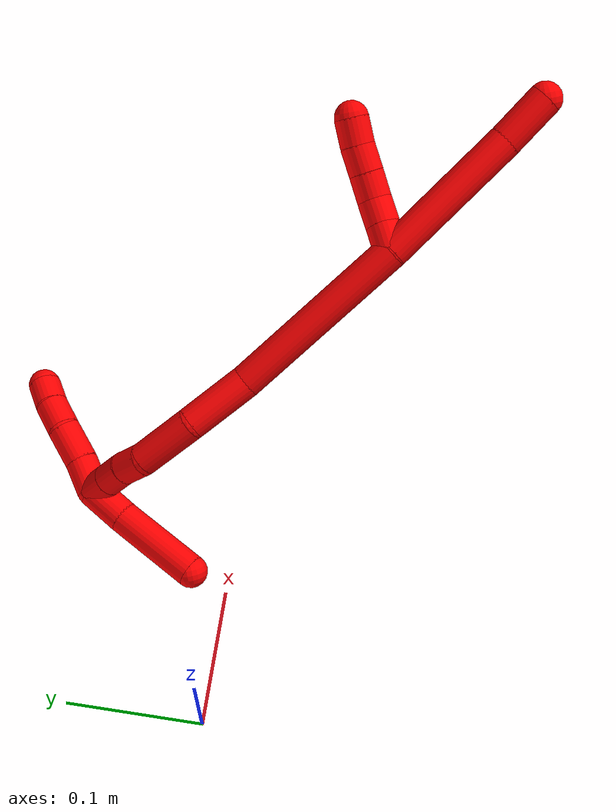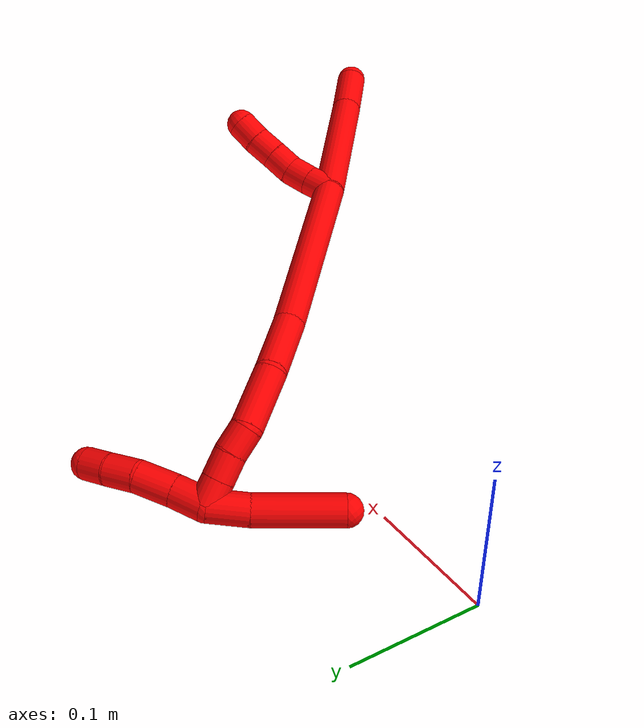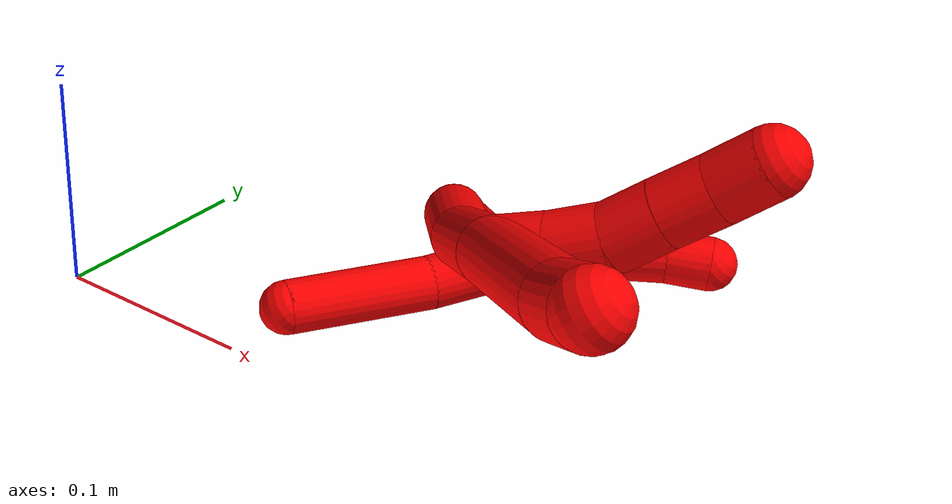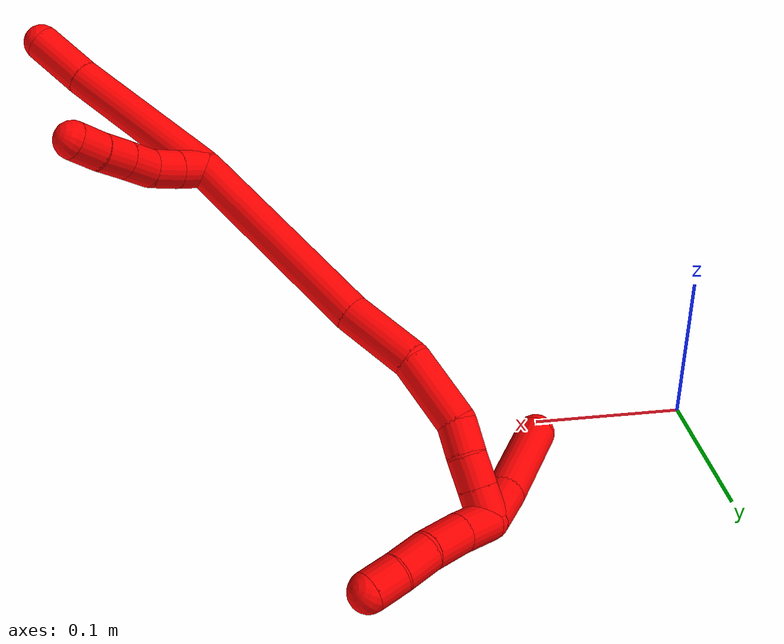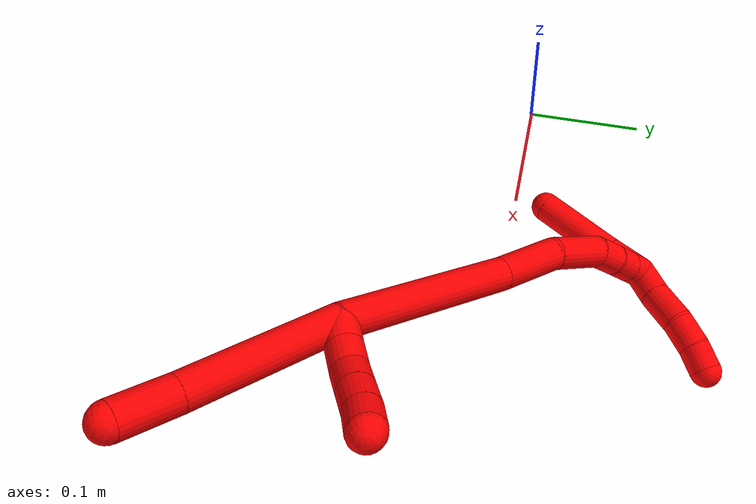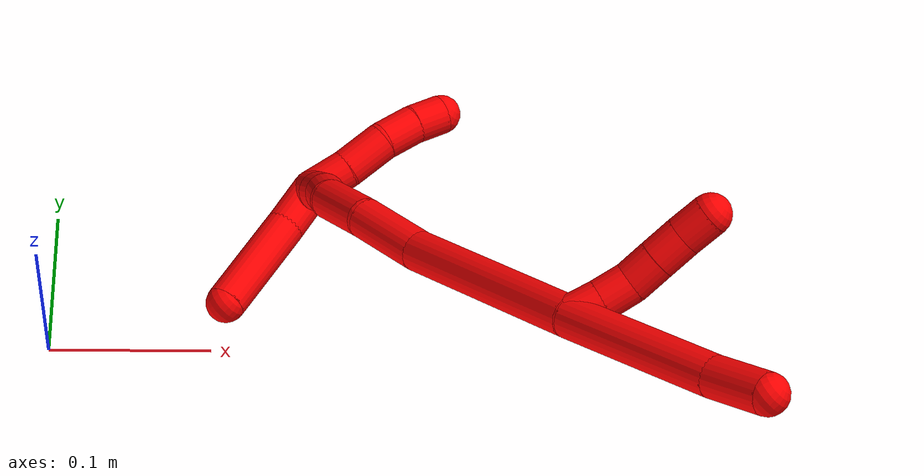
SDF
<sdf version="1.7">
 <world name="default">
  <model name="2">
   <static>0</static>
   <link name="2">
    <collision name="collision-cylinder-e_1_2_8">
     <pose>0.04283 -0.016993 0.030333 0.510645 0.888906 0.247342</pose>
     <geometry><cylinder><radius>0.0125</radius><length>0.110332</length></cylinder></geometry>
     <surface>
      <friction><ode><mu>1.16</mu><mu2>1.16</mu2><slip1>0</slip1><slip2>0</slip2></ode></friction>
      <contact><ode><kp>1e+06</kp><kd>1</kd><max_vel>0</max_vel><min_depth>0.001</min_depth></ode></contact>
     </surface>
    </collision>
    <visual name="visual-cylinder-e_1_2_8">
     <pose>0.04283 -0.016993 0.030333 0.510645 0.888906 0.247342</pose>
     <geometry><cylinder><radius>0.0125</radius><length>0.110332</length></cylinder></geometry>
     <material><ambient>1 0 0 1</ambient></material>
    </visual>
    <collision name="collision-cylinder-e_2_8_6">
     <pose>0.099934 -0.041153 0.072426 0.547367 0.803361 0.237372</pose>
     <geometry><cylinder><radius>0.0125</radius><length>0.039668</length></cylinder></geometry>
     <surface>
      <friction><ode><mu>1.16</mu><mu2>1.16</mu2><slip1>0</slip1><slip2>0</slip2></ode></friction>
      <contact><ode><kp>1e+06</kp><kd>1</kd><max_vel>0</max_vel><min_depth>0.001</min_depth></ode></contact>
     </surface>
    </collision>
    <visual name="visual-cylinder-e_2_8_6">
     <pose>0.099934 -0.041153 0.072426 0.547367 0.803361 0.237372</pose>
     <geometry><cylinder><radius>0.0125</radius><length>0.039668</length></cylinder></geometry>
     <material><ambient>1 0 0 1</ambient></material>
    </visual>
    <collision name="collision-cylinder-e_1_2_9">
     <pose>0.00094 0.004238 0.009009 -0.439677 0.094181 -0.02106</pose>
     <geometry><cylinder><radius>0.0125</radius><length>0.02</length></cylinder></geometry>
     <surface>
      <friction><ode><mu>1.16</mu><mu2>1.16</mu2><slip1>0</slip1><slip2>0</slip2></ode></friction>
      <contact><ode><kp>1e+06</kp><kd>1</kd><max_vel>0</max_vel><min_depth>0.001</min_depth></ode></contact>
     </surface>
    </collision>
    <visual name="visual-cylinder-e_1_2_9">
     <pose>0.00094 0.004238 0.009009 -0.439677 0.094181 -0.02106</pose>
     <geometry><cylinder><radius>0.0125</radius><length>0.02</length></cylinder></geometry>
     <material><ambient>1 0 0 1</ambient></material>
    </visual>
    <collision name="collision-cylinder-e_2_9_10">
     <pose>0.002327 0.012092 0.02733 -0.370421 0.044677 -0.008372</pose>
     <geometry><cylinder><radius>0.0125</radius><length>0.02</length></cylinder></geometry>
     <surface>
      <friction><ode><mu>1.16</mu><mu2>1.16</mu2><slip1>0</slip1><slip2>0</slip2></ode></friction>
      <contact><ode><kp>1e+06</kp><kd>1</kd><max_vel>0</max_vel><min_depth>0.001</min_depth></ode></contact>
     </surface>
    </collision>
    <visual name="visual-cylinder-e_2_9_10">
     <pose>0.002327 0.012092 0.02733 -0.370421 0.044677 -0.008372</pose>
     <geometry><cylinder><radius>0.0125</radius><length>0.02</length></cylinder></geometry>
     <material><ambient>1 0 0 1</ambient></material>
    </visual>
    <collision name="collision-cylinder-e_3_10_11">
     <pose>0.001979 0.016929 0.046536 -0.122815 -0.079602 0.004897</pose>
     <geometry><cylinder><radius>0.0125</radius><length>0.02</length></cylinder></geometry>
     <surface>
      <friction><ode><mu>1.16</mu><mu2>1.16</mu2><slip1>0</slip1><slip2>0</slip2></ode></friction>
      <contact><ode><kp>1e+06</kp><kd>1</kd><max_vel>0</max_vel><min_depth>0.001</min_depth></ode></contact>
     </surface>
    </collision>
    <visual name="visual-cylinder-e_3_10_11">
     <pose>0.001979 0.016929 0.046536 -0.122815 -0.079602 0.004897</pose>
     <geometry><cylinder><radius>0.0125</radius><length>0.02</length></cylinder></geometry>
     <material><ambient>1 0 0 1</ambient></material>
    </visual>
    <collision name="collision-cylinder-e_4_11_12">
     <pose>0.000401 0.019597 0.066293 -0.145611 -0.078373 0.005719</pose>
     <geometry><cylinder><radius>0.0125</radius><length>0.02</length></cylinder></geometry>
     <surface>
      <friction><ode><mu>1.16</mu><mu2>1.16</mu2><slip1>0</slip1><slip2>0</slip2></ode></friction>
      <contact><ode><kp>1e+06</kp><kd>1</kd><max_vel>0</max_vel><min_depth>0.001</min_depth></ode></contact>
     </surface>
    </collision>
    <visual name="visual-cylinder-e_4_11_12">
     <pose>0.000401 0.019597 0.066293 -0.145611 -0.078373 0.005719</pose>
     <geometry><cylinder><radius>0.0125</radius><length>0.02</length></cylinder></geometry>
     <material><ambient>1 0 0 1</ambient></material>
    </visual>
    <collision name="collision-cylinder-e_5_12_5">
     <pose>-0.000575 0.021652 0.086136 -0.060909 -0.019316 0.000588</pose>
     <geometry><cylinder><radius>0.0125</radius><length>0.02</length></cylinder></geometry>
     <surface>
      <friction><ode><mu>1.16</mu><mu2>1.16</mu2><slip1>0</slip1><slip2>0</slip2></ode></friction>
      <contact><ode><kp>1e+06</kp><kd>1</kd><max_vel>0</max_vel><min_depth>0.001</min_depth></ode></contact>
     </surface>
    </collision>
    <visual name="visual-cylinder-e_5_12_5">
     <pose>-0.000575 0.021652 0.086136 -0.060909 -0.019316 0.000588</pose>
     <geometry><cylinder><radius>0.0125</radius><length>0.02</length></cylinder></geometry>
     <material><ambient>1 0 0 1</ambient></material>
    </visual>
    <collision name="collision-cylinder-e_1_2_13">
     <pose>-0.051811 0.029633 -0.036976 -2.466 -0.829991 1.79546</pose>
     <geometry><cylinder><radius>0.0125</radius><length>0.140424</length></cylinder></geometry>
     <surface>
      <friction><ode><mu>1.16</mu><mu2>1.16</mu2><slip1>0</slip1><slip2>0</slip2></ode></friction>
      <contact><ode><kp>1e+06</kp><kd>1</kd><max_vel>0</max_vel><min_depth>0.001</min_depth></ode></contact>
     </surface>
    </collision>
    <visual name="visual-cylinder-e_1_2_13">
     <pose>-0.051811 0.029633 -0.036976 -2.466 -0.829991 1.79546</pose>
     <geometry><cylinder><radius>0.0125</radius><length>0.140424</length></cylinder></geometry>
     <material><ambient>1 0 0 1</ambient></material>
    </visual>
    <collision name="collision-cylinder-e_2_13_14">
     <pose>-0.124629 0.067376 -0.085166 -2.51538 -0.988261 2.0593</pose>
     <geometry><cylinder><radius>0.0125</radius><length>0.05031</length></cylinder></geometry>
     <surface>
      <friction><ode><mu>1.16</mu><mu2>1.16</mu2><slip1>0</slip1><slip2>0</slip2></ode></friction>
      <contact><ode><kp>1e+06</kp><kd>1</kd><max_vel>0</max_vel><min_depth>0.001</min_depth></ode></contact>
     </surface>
    </collision>
    <visual name="visual-cylinder-e_2_13_14">
     <pose>-0.124629 0.067376 -0.085166 -2.51538 -0.988261 2.0593</pose>
     <geometry><cylinder><radius>0.0125</radius><length>0.05031</length></cylinder></geometry>
     <material><ambient>1 0 0 1</ambient></material>
    </visual>
    <collision name="collision-cylinder-e_3_14_15">
     <pose>-0.161831 0.08896 -0.107447 -2.25847 -0.748512 1.38663</pose>
     <geometry><cylinder><radius>0.0125</radius><length>0.047596</length></cylinder></geometry>
     <surface>
      <friction><ode><mu>1.16</mu><mu2>1.16</mu2><slip1>0</slip1><slip2>0</slip2></ode></friction>
      <contact><ode><kp>1e+06</kp><kd>1</kd><max_vel>0</max_vel><min_depth>0.001</min_depth></ode></contact>
     </surface>
    </collision>
    <visual name="visual-cylinder-e_3_14_15">
     <pose>-0.161831 0.08896 -0.107447 -2.25847 -0.748512 1.38663</pose>
     <geometry><cylinder><radius>0.0125</radius><length>0.047596</length></cylinder></geometry>
     <material><ambient>1 0 0 1</ambient></material>
    </visual>
    <collision name="collision-cylinder-e_4_15_16">
     <pose>-0.183366 0.110964 -0.121892 -1.94781 -0.527026 0.755814</pose>
     <geometry><cylinder><radius>0.0125</radius><length>0.02123</length></cylinder></geometry>
     <surface>
      <friction><ode><mu>1.16</mu><mu2>1.16</mu2><slip1>0</slip1><slip2>0</slip2></ode></friction>
      <contact><ode><kp>1e+06</kp><kd>1</kd><max_vel>0</max_vel><min_depth>0.001</min_depth></ode></contact>
     </surface>
    </collision>
    <visual name="visual-cylinder-e_4_15_16">
     <pose>-0.183366 0.110964 -0.121892 -1.94781 -0.527026 0.755814</pose>
     <geometry><cylinder><radius>0.0125</radius><length>0.02123</length></cylinder></geometry>
     <material><ambient>1 0 0 1</ambient></material>
    </visual>
    <collision name="collision-cylinder-e_5_16_17">
     <pose>-0.193099 0.127517 -0.129796 -2.08451 -0.445156 0.739501</pose>
     <geometry><cylinder><radius>0.0125</radius><length>0.020412</length></cylinder></geometry>
     <surface>
      <friction><ode><mu>1.16</mu><mu2>1.16</mu2><slip1>0</slip1><slip2>0</slip2></ode></friction>
      <contact><ode><kp>1e+06</kp><kd>1</kd><max_vel>0</max_vel><min_depth>0.001</min_depth></ode></contact>
     </surface>
    </collision>
    <visual name="visual-cylinder-e_5_16_17">
     <pose>-0.193099 0.127517 -0.129796 -2.08451 -0.445156 0.739501</pose>
     <geometry><cylinder><radius>0.0125</radius><length>0.020412</length></cylinder></geometry>
     <material><ambient>1 0 0 1</ambient></material>
    </visual>
    <collision name="collision-cylinder-e_6_17_1">
     <pose>-0.201836 0.143403 -0.138749 -2.08345 -0.448502 0.743906</pose>
     <geometry><cylinder><radius>0.0125</radius><length>0.020027</length></cylinder></geometry>
     <surface>
      <friction><ode><mu>1.16</mu><mu2>1.16</mu2><slip1>0</slip1><slip2>0</slip2></ode></friction>
      <contact><ode><kp>1e+06</kp><kd>1</kd><max_vel>0</max_vel><min_depth>0.001</min_depth></ode></contact>
     </surface>
    </collision>
    <visual name="visual-cylinder-e_6_17_1">
     <pose>-0.201836 0.143403 -0.138749 -2.08345 -0.448502 0.743906</pose>
     <geometry><cylinder><radius>0.0125</radius><length>0.020027</length></cylinder></geometry>
     <material><ambient>1 0 0 1</ambient></material>
    </visual>
    <collision name="collision-cylinder-e_1_1_18">
     <pose>-0.199552 0.142049 -0.154223 2.44629 0.431601 1.0881</pose>
     <geometry><cylinder><radius>0.0125</radius><length>0.031682</length></cylinder></geometry>
     <surface>
      <friction><ode><mu>1.16</mu><mu2>1.16</mu2><slip1>0</slip1><slip2>0</slip2></ode></friction>
      <contact><ode><kp>1e+06</kp><kd>1</kd><max_vel>0</max_vel><min_depth>0.001</min_depth></ode></contact>
     </surface>
    </collision>
    <visual name="visual-cylinder-e_1_1_18">
     <pose>-0.199552 0.142049 -0.154223 2.44629 0.431601 1.0881</pose>
     <geometry><cylinder><radius>0.0125</radius><length>0.031682</length></cylinder></geometry>
     <material><ambient>1 0 0 1</ambient></material>
    </visual>
    <collision name="collision-cylinder-e_2_18_4">
     <pose>-0.178913 0.1101 -0.186573 2.32375 0.422679 0.919409</pose>
     <geometry><cylinder><radius>0.0125</radius><length>0.068318</length></cylinder></geometry>
     <surface>
      <friction><ode><mu>1.16</mu><mu2>1.16</mu2><slip1>0</slip1><slip2>0</slip2></ode></friction>
      <contact><ode><kp>1e+06</kp><kd>1</kd><max_vel>0</max_vel><min_depth>0.001</min_depth></ode></contact>
     </surface>
    </collision>
    <visual name="visual-cylinder-e_2_18_4">
     <pose>-0.178913 0.1101 -0.186573 2.32375 0.422679 0.919409</pose>
     <geometry><cylinder><radius>0.0125</radius><length>0.068318</length></cylinder></geometry>
     <material><ambient>1 0 0 1</ambient></material>
    </visual>
    <collision name="collision-cylinder-e_1_1_19">
     <pose>-0.20634 0.157933 -0.132265 -0.548534 -0.012693 0.003571</pose>
     <geometry><cylinder><radius>0.0125</radius><length>0.025574</length></cylinder></geometry>
     <surface>
      <friction><ode><mu>1.16</mu><mu2>1.16</mu2><slip1>0</slip1><slip2>0</slip2></ode></friction>
      <contact><ode><kp>1e+06</kp><kd>1</kd><max_vel>0</max_vel><min_depth>0.001</min_depth></ode></contact>
     </surface>
    </collision>
    <visual name="visual-cylinder-e_1_1_19">
     <pose>-0.20634 0.157933 -0.132265 -0.548534 -0.012693 0.003571</pose>
     <geometry><cylinder><radius>0.0125</radius><length>0.025574</length></cylinder></geometry>
     <material><ambient>1 0 0 1</ambient></material>
    </visual>
    <collision name="collision-cylinder-e_2_19_20">
     <pose>-0.208356 0.172373 -0.108715 -0.551352 -0.124249 0.035189</pose>
     <geometry><cylinder><radius>0.0125</radius><length>0.029908</length></cylinder></geometry>
     <surface>
      <friction><ode><mu>1.16</mu><mu2>1.16</mu2><slip1>0</slip1><slip2>0</slip2></ode></friction>
      <contact><ode><kp>1e+06</kp><kd>1</kd><max_vel>0</max_vel><min_depth>0.001</min_depth></ode></contact>
     </surface>
    </collision>
    <visual name="visual-cylinder-e_2_19_20">
     <pose>-0.208356 0.172373 -0.108715 -0.551352 -0.124249 0.035189</pose>
     <geometry><cylinder><radius>0.0125</radius><length>0.029908</length></cylinder></geometry>
     <material><ambient>1 0 0 1</ambient></material>
    </visual>
    <collision name="collision-cylinder-e_3_20_21">
     <pose>-0.210544 0.188274 -0.087241 -0.743812 -0.027886 0.010878</pose>
     <geometry><cylinder><radius>0.0125</radius><length>0.024017</length></cylinder></geometry>
     <surface>
      <friction><ode><mu>1.16</mu><mu2>1.16</mu2><slip1>0</slip1><slip2>0</slip2></ode></friction>
      <contact><ode><kp>1e+06</kp><kd>1</kd><max_vel>0</max_vel><min_depth>0.001</min_depth></ode></contact>
     </surface>
    </collision>
    <visual name="visual-cylinder-e_3_20_21">
     <pose>-0.210544 0.188274 -0.087241 -0.743812 -0.027886 0.010878</pose>
     <geometry><cylinder><radius>0.0125</radius><length>0.024017</length></cylinder></geometry>
     <material><ambient>1 0 0 1</ambient></material>
    </visual>
    <collision name="collision-cylinder-e_4_21_3">
     <pose>-0.20988 0.203621 -0.071199 -0.786134 0.097603 -0.040497</pose>
     <geometry><cylinder><radius>0.0125</radius><length>0.020501</length></cylinder></geometry>
     <surface>
      <friction><ode><mu>1.16</mu><mu2>1.16</mu2><slip1>0</slip1><slip2>0</slip2></ode></friction>
      <contact><ode><kp>1e+06</kp><kd>1</kd><max_vel>0</max_vel><min_depth>0.001</min_depth></ode></contact>
     </surface>
    </collision>
    <visual name="visual-cylinder-e_4_21_3">
     <pose>-0.20988 0.203621 -0.071199 -0.786134 0.097603 -0.040497</pose>
     <geometry><cylinder><radius>0.0125</radius><length>0.020501</length></cylinder></geometry>
     <material><ambient>1 0 0 1</ambient></material>
    </visual>
    <collision name="collision-sphere-3">
     <pose>-0.208881 0.21084 -0.063991 0 -0 0</pose>
     <geometry><sphere><radius>0.0125</radius></sphere></geometry>
     <surface>
      <friction><ode><mu>1.16</mu><mu2>1.16</mu2><slip1>0</slip1><slip2>0</slip2></ode></friction>
      <contact><ode><kp>1e+06</kp><kd>1</kd><max_vel>0</max_vel><min_depth>0.001</min_depth></ode></contact>
     </surface>
    </collision>
    <visual name="visual-sphere-3">
     <pose>-0.208881 0.21084 -0.063991 0 -0 0</pose>
     <geometry><sphere><radius>0.0125</radius></sphere></geometry>
     <material><ambient>1 0 0 1</ambient></material>
    </visual>
    <collision name="collision-sphere-21">
     <pose>-0.210879 0.196402 -0.078408 0 -0 0</pose>
     <geometry><sphere><radius>0.0125</radius></sphere></geometry>
     <surface>
      <friction><ode><mu>1.16</mu><mu2>1.16</mu2><slip1>0</slip1><slip2>0</slip2></ode></friction>
      <contact><ode><kp>1e+06</kp><kd>1</kd><max_vel>0</max_vel><min_depth>0.001</min_depth></ode></contact>
     </surface>
    </collision>
    <visual name="visual-sphere-21">
     <pose>-0.210879 0.196402 -0.078408 0 -0 0</pose>
     <geometry><sphere><radius>0.0125</radius></sphere></geometry>
     <material><ambient>1 0 0 1</ambient></material>
    </visual>
    <collision name="collision-sphere-20">
     <pose>-0.210209 0.180146 -0.096075 0 -0 0</pose>
     <geometry><sphere><radius>0.0125</radius></sphere></geometry>
     <surface>
      <friction><ode><mu>1.16</mu><mu2>1.16</mu2><slip1>0</slip1><slip2>0</slip2></ode></friction>
      <contact><ode><kp>1e+06</kp><kd>1</kd><max_vel>0</max_vel><min_depth>0.001</min_depth></ode></contact>
     </surface>
    </collision>
    <visual name="visual-sphere-20">
     <pose>-0.210209 0.180146 -0.096075 0 -0 0</pose>
     <geometry><sphere><radius>0.0125</radius></sphere></geometry>
     <material><ambient>1 0 0 1</ambient></material>
    </visual>
    <collision name="collision-sphere-19">
     <pose>-0.206503 0.1646 -0.121355 0 -0 0</pose>
     <geometry><sphere><radius>0.0125</radius></sphere></geometry>
     <surface>
      <friction><ode><mu>1.16</mu><mu2>1.16</mu2><slip1>0</slip1><slip2>0</slip2></ode></friction>
      <contact><ode><kp>1e+06</kp><kd>1</kd><max_vel>0</max_vel><min_depth>0.001</min_depth></ode></contact>
     </surface>
    </collision>
    <visual name="visual-sphere-19">
     <pose>-0.206503 0.1646 -0.121355 0 -0 0</pose>
     <geometry><sphere><radius>0.0125</radius></sphere></geometry>
     <material><ambient>1 0 0 1</ambient></material>
    </visual>
    <collision name="collision-sphere-11">
     <pose>0.001184 0.018151 0.056429 0 -0 0</pose>
     <geometry><sphere><radius>0.0125</radius></sphere></geometry>
     <surface>
      <friction><ode><mu>1.16</mu><mu2>1.16</mu2><slip1>0</slip1><slip2>0</slip2></ode></friction>
      <contact><ode><kp>1e+06</kp><kd>1</kd><max_vel>0</max_vel><min_depth>0.001</min_depth></ode></contact>
     </surface>
    </collision>
    <visual name="visual-sphere-11">
     <pose>0.001184 0.018151 0.056429 0 -0 0</pose>
     <geometry><sphere><radius>0.0125</radius></sphere></geometry>
     <material><ambient>1 0 0 1</ambient></material>
    </visual>
    <collision name="collision-sphere-10">
     <pose>0.002774 0.015708 0.036642 0 -0 0</pose>
     <geometry><sphere><radius>0.0125</radius></sphere></geometry>
     <surface>
      <friction><ode><mu>1.16</mu><mu2>1.16</mu2><slip1>0</slip1><slip2>0</slip2></ode></friction>
      <contact><ode><kp>1e+06</kp><kd>1</kd><max_vel>0</max_vel><min_depth>0.001</min_depth></ode></contact>
     </surface>
    </collision>
    <visual name="visual-sphere-10">
     <pose>0.002774 0.015708 0.036642 0 -0 0</pose>
     <geometry><sphere><radius>0.0125</radius></sphere></geometry>
     <material><ambient>1 0 0 1</ambient></material>
    </visual>
    <collision name="collision-sphere-6">
     <pose>0.114209 -0.04832 0.084184 0 -0 0</pose>
     <geometry><sphere><radius>0.0125</radius></sphere></geometry>
     <surface>
      <friction><ode><mu>1.16</mu><mu2>1.16</mu2><slip1>0</slip1><slip2>0</slip2></ode></friction>
      <contact><ode><kp>1e+06</kp><kd>1</kd><max_vel>0</max_vel><min_depth>0.001</min_depth></ode></contact>
     </surface>
    </collision>
    <visual name="visual-sphere-6">
     <pose>0.114209 -0.04832 0.084184 0 -0 0</pose>
     <geometry><sphere><radius>0.0125</radius></sphere></geometry>
     <material><ambient>1 0 0 1</ambient></material>
    </visual>
    <collision name="collision-sphere-9">
     <pose>0.001881 0.008475 0.018018 0 -0 0</pose>
     <geometry><sphere><radius>0.0125</radius></sphere></geometry>
     <surface>
      <friction><ode><mu>1.16</mu><mu2>1.16</mu2><slip1>0</slip1><slip2>0</slip2></ode></friction>
      <contact><ode><kp>1e+06</kp><kd>1</kd><max_vel>0</max_vel><min_depth>0.001</min_depth></ode></contact>
     </surface>
    </collision>
    <visual name="visual-sphere-9">
     <pose>0.001881 0.008475 0.018018 0 -0 0</pose>
     <geometry><sphere><radius>0.0125</radius></sphere></geometry>
     <material><ambient>1 0 0 1</ambient></material>
    </visual>
    <collision name="collision-sphere-2">
     <geometry><sphere><radius>0.0125</radius></sphere></geometry>
     <surface>
      <friction><ode><mu>1.16</mu><mu2>1.16</mu2><slip1>0</slip1><slip2>0</slip2></ode></friction>
      <contact><ode><kp>1e+06</kp><kd>1</kd><max_vel>0</max_vel><min_depth>0.001</min_depth></ode></contact>
     </surface>
    </collision>
    <visual name="visual-sphere-2">
     <geometry><sphere><radius>0.0125</radius></sphere></geometry>
     <material><ambient>1 0 0 1</ambient></material>
    </visual>
    <collision name="collision-sphere-8">
     <pose>0.08566 -0.033986 0.060667 0 -0 0</pose>
     <geometry><sphere><radius>0.0125</radius></sphere></geometry>
     <surface>
      <friction><ode><mu>1.16</mu><mu2>1.16</mu2><slip1>0</slip1><slip2>0</slip2></ode></friction>
      <contact><ode><kp>1e+06</kp><kd>1</kd><max_vel>0</max_vel><min_depth>0.001</min_depth></ode></contact>
     </surface>
    </collision>
    <visual name="visual-sphere-8">
     <pose>0.08566 -0.033986 0.060667 0 -0 0</pose>
     <geometry><sphere><radius>0.0125</radius></sphere></geometry>
     <material><ambient>1 0 0 1</ambient></material>
    </visual>
    <collision name="collision-sphere-12">
     <pose>-0.000382 0.021044 0.076157 0 -0 0</pose>
     <geometry><sphere><radius>0.0125</radius></sphere></geometry>
     <surface>
      <friction><ode><mu>1.16</mu><mu2>1.16</mu2><slip1>0</slip1><slip2>0</slip2></ode></friction>
      <contact><ode><kp>1e+06</kp><kd>1</kd><max_vel>0</max_vel><min_depth>0.001</min_depth></ode></contact>
     </surface>
    </collision>
    <visual name="visual-sphere-12">
     <pose>-0.000382 0.021044 0.076157 0 -0 0</pose>
     <geometry><sphere><radius>0.0125</radius></sphere></geometry>
     <material><ambient>1 0 0 1</ambient></material>
    </visual>
    <collision name="collision-sphere-5">
     <pose>-0.000768 0.022261 0.096116 0 -0 0</pose>
     <geometry><sphere><radius>0.0125</radius></sphere></geometry>
     <surface>
      <friction><ode><mu>1.16</mu><mu2>1.16</mu2><slip1>0</slip1><slip2>0</slip2></ode></friction>
      <contact><ode><kp>1e+06</kp><kd>1</kd><max_vel>0</max_vel><min_depth>0.001</min_depth></ode></contact>
     </surface>
    </collision>
    <visual name="visual-sphere-5">
     <pose>-0.000768 0.022261 0.096116 0 -0 0</pose>
     <geometry><sphere><radius>0.0125</radius></sphere></geometry>
     <material><ambient>1 0 0 1</ambient></material>
    </visual>
    <collision name="collision-sphere-13">
     <pose>-0.103623 0.059265 -0.073953 0 -0 0</pose>
     <geometry><sphere><radius>0.0125</radius></sphere></geometry>
     <surface>
      <friction><ode><mu>1.16</mu><mu2>1.16</mu2><slip1>0</slip1><slip2>0</slip2></ode></friction>
      <contact><ode><kp>1e+06</kp><kd>1</kd><max_vel>0</max_vel><min_depth>0.001</min_depth></ode></contact>
     </surface>
    </collision>
    <visual name="visual-sphere-13">
     <pose>-0.103623 0.059265 -0.073953 0 -0 0</pose>
     <geometry><sphere><radius>0.0125</radius></sphere></geometry>
     <material><ambient>1 0 0 1</ambient></material>
    </visual>
    <collision name="collision-sphere-14">
     <pose>-0.145635 0.075486 -0.096379 0 -0 0</pose>
     <geometry><sphere><radius>0.0125</radius></sphere></geometry>
     <surface>
      <friction><ode><mu>1.16</mu><mu2>1.16</mu2><slip1>0</slip1><slip2>0</slip2></ode></friction>
      <contact><ode><kp>1e+06</kp><kd>1</kd><max_vel>0</max_vel><min_depth>0.001</min_depth></ode></contact>
     </surface>
    </collision>
    <visual name="visual-sphere-14">
     <pose>-0.145635 0.075486 -0.096379 0 -0 0</pose>
     <geometry><sphere><radius>0.0125</radius></sphere></geometry>
     <material><ambient>1 0 0 1</ambient></material>
    </visual>
    <collision name="collision-sphere-15">
     <pose>-0.178027 0.102434 -0.118515 0 -0 0</pose>
     <geometry><sphere><radius>0.0125</radius></sphere></geometry>
     <surface>
      <friction><ode><mu>1.16</mu><mu2>1.16</mu2><slip1>0</slip1><slip2>0</slip2></ode></friction>
      <contact><ode><kp>1e+06</kp><kd>1</kd><max_vel>0</max_vel><min_depth>0.001</min_depth></ode></contact>
     </surface>
    </collision>
    <visual name="visual-sphere-15">
     <pose>-0.178027 0.102434 -0.118515 0 -0 0</pose>
     <geometry><sphere><radius>0.0125</radius></sphere></geometry>
     <material><ambient>1 0 0 1</ambient></material>
    </visual>
    <collision name="collision-sphere-16">
     <pose>-0.188704 0.119495 -0.12527 0 -0 0</pose>
     <geometry><sphere><radius>0.0125</radius></sphere></geometry>
     <surface>
      <friction><ode><mu>1.16</mu><mu2>1.16</mu2><slip1>0</slip1><slip2>0</slip2></ode></friction>
      <contact><ode><kp>1e+06</kp><kd>1</kd><max_vel>0</max_vel><min_depth>0.001</min_depth></ode></contact>
     </surface>
    </collision>
    <visual name="visual-sphere-16">
     <pose>-0.188704 0.119495 -0.12527 0 -0 0</pose>
     <geometry><sphere><radius>0.0125</radius></sphere></geometry>
     <material><ambient>1 0 0 1</ambient></material>
    </visual>
    <collision name="collision-sphere-17">
     <pose>-0.197494 0.13554 -0.134323 0 -0 0</pose>
     <geometry><sphere><radius>0.0125</radius></sphere></geometry>
     <surface>
      <friction><ode><mu>1.16</mu><mu2>1.16</mu2><slip1>0</slip1><slip2>0</slip2></ode></friction>
      <contact><ode><kp>1e+06</kp><kd>1</kd><max_vel>0</max_vel><min_depth>0.001</min_depth></ode></contact>
     </surface>
    </collision>
    <visual name="visual-sphere-17">
     <pose>-0.197494 0.13554 -0.134323 0 -0 0</pose>
     <geometry><sphere><radius>0.0125</radius></sphere></geometry>
     <material><ambient>1 0 0 1</ambient></material>
    </visual>
    <collision name="collision-sphere-1">
     <pose>-0.206178 0.151266 -0.143175 0 -0 0</pose>
     <geometry><sphere><radius>0.0125</radius></sphere></geometry>
     <surface>
      <friction><ode><mu>1.16</mu><mu2>1.16</mu2><slip1>0</slip1><slip2>0</slip2></ode></friction>
      <contact><ode><kp>1e+06</kp><kd>1</kd><max_vel>0</max_vel><min_depth>0.001</min_depth></ode></contact>
     </surface>
    </collision>
    <visual name="visual-sphere-1">
     <pose>-0.206178 0.151266 -0.143175 0 -0 0</pose>
     <geometry><sphere><radius>0.0125</radius></sphere></geometry>
     <material><ambient>1 0 0 1</ambient></material>
    </visual>
    <collision name="collision-sphere-18">
     <pose>-0.192925 0.132832 -0.165271 0 -0 0</pose>
     <geometry><sphere><radius>0.0125</radius></sphere></geometry>
     <surface>
      <friction><ode><mu>1.16</mu><mu2>1.16</mu2><slip1>0</slip1><slip2>0</slip2></ode></friction>
      <contact><ode><kp>1e+06</kp><kd>1</kd><max_vel>0</max_vel><min_depth>0.001</min_depth></ode></contact>
     </surface>
    </collision>
    <visual name="visual-sphere-18">
     <pose>-0.192925 0.132832 -0.165271 0 -0 0</pose>
     <geometry><sphere><radius>0.0125</radius></sphere></geometry>
     <material><ambient>1 0 0 1</ambient></material>
    </visual>
    <collision name="collision-sphere-4">
     <pose>-0.1649 0.087369 -0.207876 0 -0 0</pose>
     <geometry><sphere><radius>0.0125</radius></sphere></geometry>
     <surface>
      <friction><ode><mu>1.16</mu><mu2>1.16</mu2><slip1>0</slip1><slip2>0</slip2></ode></friction>
      <contact><ode><kp>1e+06</kp><kd>1</kd><max_vel>0</max_vel><min_depth>0.001</min_depth></ode></contact>
     </surface>
    </collision>
    <visual name="visual-sphere-4">
     <pose>-0.1649 0.087369 -0.207876 0 -0 0</pose>
     <geometry><sphere><radius>0.0125</radius></sphere></geometry>
     <material><ambient>1 0 0 1</ambient></material>
    </visual>
    <inertial>
     <pose>-0.084996 0.063348 -0.05267 0 -0 0</pose>
     <mass>0.75</mass>
     <inertia>
      <ixx>0.000287</ixx>
      <ixy>0</ixy>
      <ixz>0</ixz>
      <iyy>0.000511</iyy>
      <iyz>0</iyz>
      <izz>2.9e-05</izz>
     </inertia>
    </inertial>
   </link>
   <pose>0.312332 -0.088162 0.164126 -0.87636 0.25525 -0.975783</pose>
  </model>
 </world>
</sdf>
